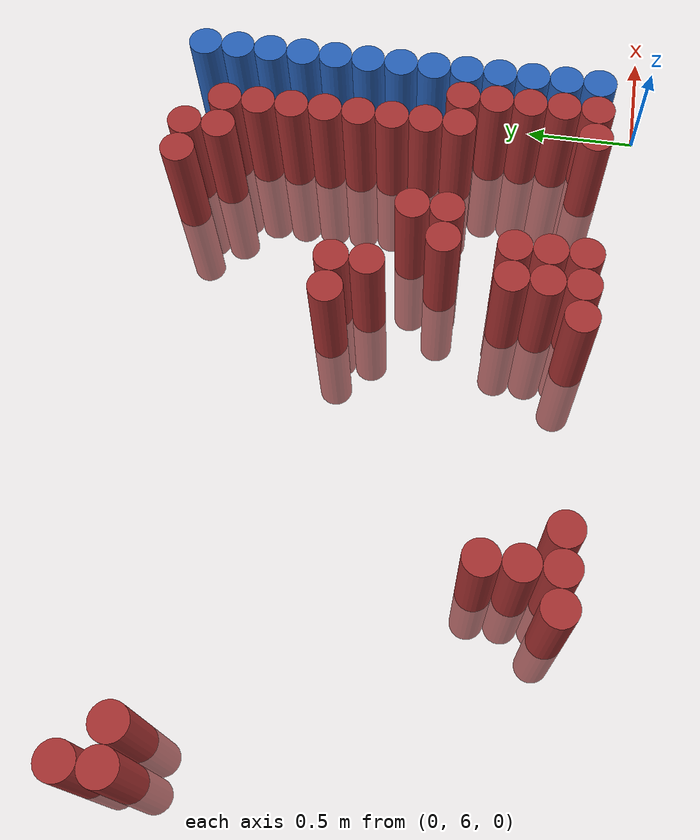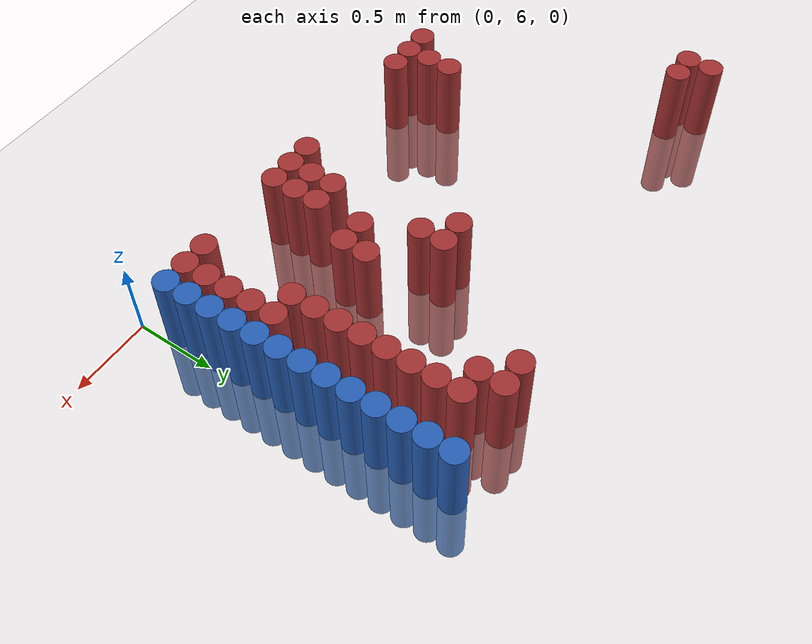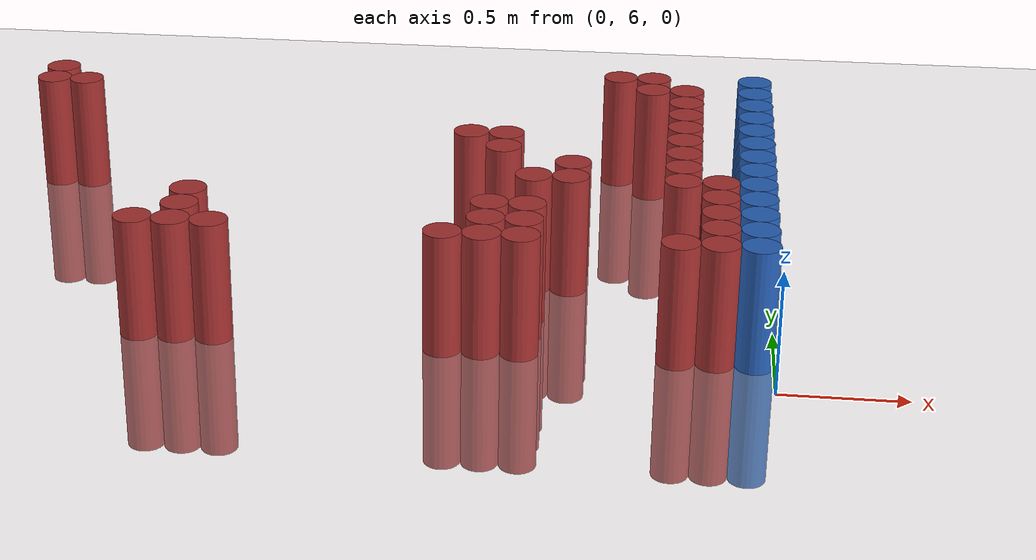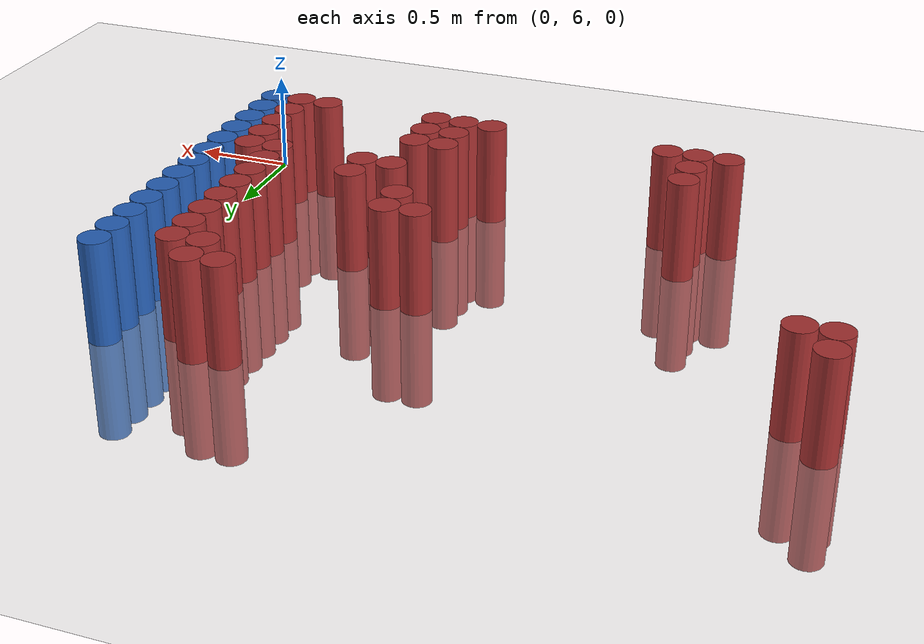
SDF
<sdf version="1.6">
 <world name="default">
  <model name="ground_plane">
   <static>1</static>
   <link name="link">
    <collision name="collision">
     <geometry><plane><normal>0 0 1</normal><size>100 100</size></plane></geometry>
     <surface><friction><ode><mu>100</mu><mu2>50</mu2></ode></friction></surface>
    </collision>
    <visual name="visual">
     <cast_shadows>0</cast_shadows>
     <geometry><plane><normal>0 0 1</normal><size>100 100</size></plane></geometry>
     <material>
      <script><uri>file://media/materials/scripts/gazebo.material</uri><name>Gazebo/Grey</name></script>
     </material>
    </visual>
   </link>
  </model>
  <model name="unit_cylinder_186">
   <static>1</static>
   <pose>-3.225000 7.725000 0.000000 0.000000 0.000000 0.000000</pose>
   <link name="link">
    <inertial>
     <mass>1</mass>
     <inertia><ixx>0.145833</ixx><ixy>0</ixy><ixz>0</ixz><iyy>0.145833</iyy><iyz>0</iyz><izz>0.125</izz></inertia>
    </inertial>
    <collision name="collision">
     <geometry><cylinder><radius>0.075000</radius><length>1</length></cylinder></geometry>
    </collision>
    <visual name="visual">
     <geometry><cylinder><radius>0.075000</radius><length>1</length></cylinder></geometry>
     <material>
      <ambient>0.648000 0.192000 0.192000 1</ambient>
      <diffuse>0.648000 0.192000 0.192000 1</diffuse>
     </material>
     <material>
      <script><name>Gazebo/Grey</name><uri>file://media/materials/scripts/gazebo.material</uri></script>
     </material>
    </visual>
   </link>
  </model>
  <model name="unit_cylinder_187">
   <static>1</static>
   <pose>-3.225000 7.875000 0.000000 0.000000 0.000000 0.000000</pose>
   <link name="link">
    <inertial>
     <mass>1</mass>
     <inertia><ixx>0.145833</ixx><ixy>0</ixy><ixz>0</ixz><iyy>0.145833</iyy><iyz>0</iyz><izz>0.125</izz></inertia>
    </inertial>
    <collision name="collision">
     <geometry><cylinder><radius>0.075000</radius><length>1</length></cylinder></geometry>
    </collision>
    <visual name="visual">
     <geometry><cylinder><radius>0.075000</radius><length>1</length></cylinder></geometry>
     <material>
      <ambient>0.648000 0.192000 0.192000 1</ambient>
      <diffuse>0.648000 0.192000 0.192000 1</diffuse>
     </material>
     <material>
      <script><name>Gazebo/Grey</name><uri>file://media/materials/scripts/gazebo.material</uri></script>
     </material>
    </visual>
   </link>
  </model>
  <model name="unit_cylinder_191">
   <static>1</static>
   <pose>-3.075000 7.725000 0.000000 0.000000 0.000000 0.000000</pose>
   <link name="link">
    <inertial>
     <mass>1</mass>
     <inertia><ixx>0.145833</ixx><ixy>0</ixy><ixz>0</ixz><iyy>0.145833</iyy><iyz>0</iyz><izz>0.125</izz></inertia>
    </inertial>
    <collision name="collision">
     <geometry><cylinder><radius>0.075000</radius><length>1</length></cylinder></geometry>
    </collision>
    <visual name="visual">
     <geometry><cylinder><radius>0.075000</radius><length>1</length></cylinder></geometry>
     <material>
      <ambient>0.648000 0.192000 0.192000 1</ambient>
      <diffuse>0.648000 0.192000 0.192000 1</diffuse>
     </material>
     <material>
      <script><name>Gazebo/Grey</name><uri>file://media/materials/scripts/gazebo.material</uri></script>
     </material>
    </visual>
   </link>
  </model>
  <model name="unit_cylinder_206">
   <static>1</static>
   <pose>-2.475000 6.225000 0.000000 0.000000 0.000000 0.000000</pose>
   <link name="link">
    <inertial>
     <mass>1</mass>
     <inertia><ixx>0.145833</ixx><ixy>0</ixy><ixz>0</ixz><iyy>0.145833</iyy><iyz>0</iyz><izz>0.125</izz></inertia>
    </inertial>
    <collision name="collision">
     <geometry><cylinder><radius>0.075000</radius><length>1</length></cylinder></geometry>
    </collision>
    <visual name="visual">
     <geometry><cylinder><radius>0.075000</radius><length>1</length></cylinder></geometry>
     <material>
      <ambient>0.648000 0.192000 0.192000 1</ambient>
      <diffuse>0.648000 0.192000 0.192000 1</diffuse>
     </material>
     <material>
      <script><name>Gazebo/Grey</name><uri>file://media/materials/scripts/gazebo.material</uri></script>
     </material>
    </visual>
   </link>
  </model>
  <model name="unit_cylinder_208">
   <static>1</static>
   <pose>-2.325000 6.225000 0.000000 0.000000 0.000000 0.000000</pose>
   <link name="link">
    <inertial>
     <mass>1</mass>
     <inertia><ixx>0.145833</ixx><ixy>0</ixy><ixz>0</ixz><iyy>0.145833</iyy><iyz>0</iyz><izz>0.125</izz></inertia>
    </inertial>
    <collision name="collision">
     <geometry><cylinder><radius>0.075000</radius><length>1</length></cylinder></geometry>
    </collision>
    <visual name="visual">
     <geometry><cylinder><radius>0.075000</radius><length>1</length></cylinder></geometry>
     <material>
      <ambient>0.648000 0.192000 0.192000 1</ambient>
      <diffuse>0.648000 0.192000 0.192000 1</diffuse>
     </material>
     <material>
      <script><name>Gazebo/Grey</name><uri>file://media/materials/scripts/gazebo.material</uri></script>
     </material>
    </visual>
   </link>
  </model>
  <model name="unit_cylinder_209">
   <static>1</static>
   <pose>-2.325000 6.375000 0.000000 0.000000 0.000000 0.000000</pose>
   <link name="link">
    <inertial>
     <mass>1</mass>
     <inertia><ixx>0.145833</ixx><ixy>0</ixy><ixz>0</ixz><iyy>0.145833</iyy><iyz>0</iyz><izz>0.125</izz></inertia>
    </inertial>
    <collision name="collision">
     <geometry><cylinder><radius>0.075000</radius><length>1</length></cylinder></geometry>
    </collision>
    <visual name="visual">
     <geometry><cylinder><radius>0.075000</radius><length>1</length></cylinder></geometry>
     <material>
      <ambient>0.648000 0.192000 0.192000 1</ambient>
      <diffuse>0.648000 0.192000 0.192000 1</diffuse>
     </material>
     <material>
      <script><name>Gazebo/Grey</name><uri>file://media/materials/scripts/gazebo.material</uri></script>
     </material>
    </visual>
   </link>
  </model>
  <model name="unit_cylinder_210">
   <static>1</static>
   <pose>-2.325000 6.525000 0.000000 0.000000 0.000000 0.000000</pose>
   <link name="link">
    <inertial>
     <mass>1</mass>
     <inertia><ixx>0.145833</ixx><ixy>0</ixy><ixz>0</ixz><iyy>0.145833</iyy><iyz>0</iyz><izz>0.125</izz></inertia>
    </inertial>
    <collision name="collision">
     <geometry><cylinder><radius>0.075000</radius><length>1</length></cylinder></geometry>
    </collision>
    <visual name="visual">
     <geometry><cylinder><radius>0.075000</radius><length>1</length></cylinder></geometry>
     <material>
      <ambient>0.648000 0.192000 0.192000 1</ambient>
      <diffuse>0.648000 0.192000 0.192000 1</diffuse>
     </material>
     <material>
      <script><name>Gazebo/Grey</name><uri>file://media/materials/scripts/gazebo.material</uri></script>
     </material>
    </visual>
   </link>
  </model>
  <model name="unit_cylinder_212">
   <static>1</static>
   <pose>-2.175000 6.225000 0.000000 0.000000 0.000000 0.000000</pose>
   <link name="link">
    <inertial>
     <mass>1</mass>
     <inertia><ixx>0.145833</ixx><ixy>0</ixy><ixz>0</ixz><iyy>0.145833</iyy><iyz>0</iyz><izz>0.125</izz></inertia>
    </inertial>
    <collision name="collision">
     <geometry><cylinder><radius>0.075000</radius><length>1</length></cylinder></geometry>
    </collision>
    <visual name="visual">
     <geometry><cylinder><radius>0.075000</radius><length>1</length></cylinder></geometry>
     <material>
      <ambient>0.648000 0.192000 0.192000 1</ambient>
      <diffuse>0.648000 0.192000 0.192000 1</diffuse>
     </material>
     <material>
      <script><name>Gazebo/Grey</name><uri>file://media/materials/scripts/gazebo.material</uri></script>
     </material>
    </visual>
   </link>
  </model>
  <model name="unit_cylinder_216">
   <static>1</static>
   <pose>-1.275000 6.225000 0.000000 0.000000 0.000000 0.000000</pose>
   <link name="link">
    <inertial>
     <mass>1</mass>
     <inertia><ixx>0.145833</ixx><ixy>0</ixy><ixz>0</ixz><iyy>0.145833</iyy><iyz>0</iyz><izz>0.125</izz></inertia>
    </inertial>
    <collision name="collision">
     <geometry><cylinder><radius>0.075000</radius><length>1</length></cylinder></geometry>
    </collision>
    <visual name="visual">
     <geometry><cylinder><radius>0.075000</radius><length>1</length></cylinder></geometry>
     <material>
      <ambient>0.648000 0.192000 0.192000 1</ambient>
      <diffuse>0.648000 0.192000 0.192000 1</diffuse>
     </material>
     <material>
      <script><name>Gazebo/Grey</name><uri>file://media/materials/scripts/gazebo.material</uri></script>
     </material>
    </visual>
   </link>
  </model>
  <model name="unit_cylinder_217">
   <static>1</static>
   <pose>-1.275000 7.275000 0.000000 0.000000 0.000000 0.000000</pose>
   <link name="link">
    <inertial>
     <mass>1</mass>
     <inertia><ixx>0.145833</ixx><ixy>0</ixy><ixz>0</ixz><iyy>0.145833</iyy><iyz>0</iyz><izz>0.125</izz></inertia>
    </inertial>
    <collision name="collision">
     <geometry><cylinder><radius>0.075000</radius><length>1</length></cylinder></geometry>
    </collision>
    <visual name="visual">
     <geometry><cylinder><radius>0.075000</radius><length>1</length></cylinder></geometry>
     <material>
      <ambient>0.648000 0.192000 0.192000 1</ambient>
      <diffuse>0.648000 0.192000 0.192000 1</diffuse>
     </material>
     <material>
      <script><name>Gazebo/Grey</name><uri>file://media/materials/scripts/gazebo.material</uri></script>
     </material>
    </visual>
   </link>
  </model>
  <model name="unit_cylinder_221">
   <static>1</static>
   <pose>-1.125000 6.225000 0.000000 0.000000 0.000000 0.000000</pose>
   <link name="link">
    <inertial>
     <mass>1</mass>
     <inertia><ixx>0.145833</ixx><ixy>0</ixy><ixz>0</ixz><iyy>0.145833</iyy><iyz>0</iyz><izz>0.125</izz></inertia>
    </inertial>
    <collision name="collision">
     <geometry><cylinder><radius>0.075000</radius><length>1</length></cylinder></geometry>
    </collision>
    <visual name="visual">
     <geometry><cylinder><radius>0.075000</radius><length>1</length></cylinder></geometry>
     <material>
      <ambient>0.648000 0.192000 0.192000 1</ambient>
      <diffuse>0.648000 0.192000 0.192000 1</diffuse>
     </material>
     <material>
      <script><name>Gazebo/Grey</name><uri>file://media/materials/scripts/gazebo.material</uri></script>
     </material>
    </visual>
   </link>
  </model>
  <model name="unit_cylinder_222">
   <static>1</static>
   <pose>-1.125000 6.375000 0.000000 0.000000 0.000000 0.000000</pose>
   <link name="link">
    <inertial>
     <mass>1</mass>
     <inertia><ixx>0.145833</ixx><ixy>0</ixy><ixz>0</ixz><iyy>0.145833</iyy><iyz>0</iyz><izz>0.125</izz></inertia>
    </inertial>
    <collision name="collision">
     <geometry><cylinder><radius>0.075000</radius><length>1</length></cylinder></geometry>
    </collision>
    <visual name="visual">
     <geometry><cylinder><radius>0.075000</radius><length>1</length></cylinder></geometry>
     <material>
      <ambient>0.648000 0.192000 0.192000 1</ambient>
      <diffuse>0.648000 0.192000 0.192000 1</diffuse>
     </material>
     <material>
      <script><name>Gazebo/Grey</name><uri>file://media/materials/scripts/gazebo.material</uri></script>
     </material>
    </visual>
   </link>
  </model>
  <model name="unit_cylinder_223">
   <static>1</static>
   <pose>-1.125000 6.525000 0.000000 0.000000 0.000000 0.000000</pose>
   <link name="link">
    <inertial>
     <mass>1</mass>
     <inertia><ixx>0.145833</ixx><ixy>0</ixy><ixz>0</ixz><iyy>0.145833</iyy><iyz>0</iyz><izz>0.125</izz></inertia>
    </inertial>
    <collision name="collision">
     <geometry><cylinder><radius>0.075000</radius><length>1</length></cylinder></geometry>
    </collision>
    <visual name="visual">
     <geometry><cylinder><radius>0.075000</radius><length>1</length></cylinder></geometry>
     <material>
      <ambient>0.648000 0.192000 0.192000 1</ambient>
      <diffuse>0.648000 0.192000 0.192000 1</diffuse>
     </material>
     <material>
      <script><name>Gazebo/Grey</name><uri>file://media/materials/scripts/gazebo.material</uri></script>
     </material>
    </visual>
   </link>
  </model>
  <model name="unit_cylinder_224">
   <static>1</static>
   <pose>-1.125000 7.125000 0.000000 0.000000 0.000000 0.000000</pose>
   <link name="link">
    <inertial>
     <mass>1</mass>
     <inertia><ixx>0.145833</ixx><ixy>0</ixy><ixz>0</ixz><iyy>0.145833</iyy><iyz>0</iyz><izz>0.125</izz></inertia>
    </inertial>
    <collision name="collision">
     <geometry><cylinder><radius>0.075000</radius><length>1</length></cylinder></geometry>
    </collision>
    <visual name="visual">
     <geometry><cylinder><radius>0.075000</radius><length>1</length></cylinder></geometry>
     <material>
      <ambient>0.648000 0.192000 0.192000 1</ambient>
      <diffuse>0.648000 0.192000 0.192000 1</diffuse>
     </material>
     <material>
      <script><name>Gazebo/Grey</name><uri>file://media/materials/scripts/gazebo.material</uri></script>
     </material>
    </visual>
   </link>
  </model>
  <model name="unit_cylinder_225">
   <static>1</static>
   <pose>-1.125000 7.275000 0.000000 0.000000 0.000000 0.000000</pose>
   <link name="link">
    <inertial>
     <mass>1</mass>
     <inertia><ixx>0.145833</ixx><ixy>0</ixy><ixz>0</ixz><iyy>0.145833</iyy><iyz>0</iyz><izz>0.125</izz></inertia>
    </inertial>
    <collision name="collision">
     <geometry><cylinder><radius>0.075000</radius><length>1</length></cylinder></geometry>
    </collision>
    <visual name="visual">
     <geometry><cylinder><radius>0.075000</radius><length>1</length></cylinder></geometry>
     <material>
      <ambient>0.648000 0.192000 0.192000 1</ambient>
      <diffuse>0.648000 0.192000 0.192000 1</diffuse>
     </material>
     <material>
      <script><name>Gazebo/Grey</name><uri>file://media/materials/scripts/gazebo.material</uri></script>
     </material>
    </visual>
   </link>
  </model>
  <model name="unit_cylinder_229">
   <static>1</static>
   <pose>-0.975000 6.225000 0.000000 0.000000 0.000000 0.000000</pose>
   <link name="link">
    <inertial>
     <mass>1</mass>
     <inertia><ixx>0.145833</ixx><ixy>0</ixy><ixz>0</ixz><iyy>0.145833</iyy><iyz>0</iyz><izz>0.125</izz></inertia>
    </inertial>
    <collision name="collision">
     <geometry><cylinder><radius>0.075000</radius><length>1</length></cylinder></geometry>
    </collision>
    <visual name="visual">
     <geometry><cylinder><radius>0.075000</radius><length>1</length></cylinder></geometry>
     <material>
      <ambient>0.648000 0.192000 0.192000 1</ambient>
      <diffuse>0.648000 0.192000 0.192000 1</diffuse>
     </material>
     <material>
      <script><name>Gazebo/Grey</name><uri>file://media/materials/scripts/gazebo.material</uri></script>
     </material>
    </visual>
   </link>
  </model>
  <model name="unit_cylinder_230">
   <static>1</static>
   <pose>-0.975000 6.375000 0.000000 0.000000 0.000000 0.000000</pose>
   <link name="link">
    <inertial>
     <mass>1</mass>
     <inertia><ixx>0.145833</ixx><ixy>0</ixy><ixz>0</ixz><iyy>0.145833</iyy><iyz>0</iyz><izz>0.125</izz></inertia>
    </inertial>
    <collision name="collision">
     <geometry><cylinder><radius>0.075000</radius><length>1</length></cylinder></geometry>
    </collision>
    <visual name="visual">
     <geometry><cylinder><radius>0.075000</radius><length>1</length></cylinder></geometry>
     <material>
      <ambient>0.648000 0.192000 0.192000 1</ambient>
      <diffuse>0.648000 0.192000 0.192000 1</diffuse>
     </material>
     <material>
      <script><name>Gazebo/Grey</name><uri>file://media/materials/scripts/gazebo.material</uri></script>
     </material>
    </visual>
   </link>
  </model>
  <model name="unit_cylinder_231">
   <static>1</static>
   <pose>-0.975000 6.525000 0.000000 0.000000 0.000000 0.000000</pose>
   <link name="link">
    <inertial>
     <mass>1</mass>
     <inertia><ixx>0.145833</ixx><ixy>0</ixy><ixz>0</ixz><iyy>0.145833</iyy><iyz>0</iyz><izz>0.125</izz></inertia>
    </inertial>
    <collision name="collision">
     <geometry><cylinder><radius>0.075000</radius><length>1</length></cylinder></geometry>
    </collision>
    <visual name="visual">
     <geometry><cylinder><radius>0.075000</radius><length>1</length></cylinder></geometry>
     <material>
      <ambient>0.648000 0.192000 0.192000 1</ambient>
      <diffuse>0.648000 0.192000 0.192000 1</diffuse>
     </material>
     <material>
      <script><name>Gazebo/Grey</name><uri>file://media/materials/scripts/gazebo.material</uri></script>
     </material>
    </visual>
   </link>
  </model>
  <model name="unit_cylinder_232">
   <static>1</static>
   <pose>-0.975000 6.825000 0.000000 0.000000 0.000000 0.000000</pose>
   <link name="link">
    <inertial>
     <mass>1</mass>
     <inertia><ixx>0.145833</ixx><ixy>0</ixy><ixz>0</ixz><iyy>0.145833</iyy><iyz>0</iyz><izz>0.125</izz></inertia>
    </inertial>
    <collision name="collision">
     <geometry><cylinder><radius>0.075000</radius><length>1</length></cylinder></geometry>
    </collision>
    <visual name="visual">
     <geometry><cylinder><radius>0.075000</radius><length>1</length></cylinder></geometry>
     <material>
      <ambient>0.648000 0.192000 0.192000 1</ambient>
      <diffuse>0.648000 0.192000 0.192000 1</diffuse>
     </material>
     <material>
      <script><name>Gazebo/Grey</name><uri>file://media/materials/scripts/gazebo.material</uri></script>
     </material>
    </visual>
   </link>
  </model>
  <model name="unit_cylinder_236">
   <static>1</static>
   <pose>-0.825000 6.825000 0.000000 0.000000 0.000000 0.000000</pose>
   <link name="link">
    <inertial>
     <mass>1</mass>
     <inertia><ixx>0.145833</ixx><ixy>0</ixy><ixz>0</ixz><iyy>0.145833</iyy><iyz>0</iyz><izz>0.125</izz></inertia>
    </inertial>
    <collision name="collision">
     <geometry><cylinder><radius>0.075000</radius><length>1</length></cylinder></geometry>
    </collision>
    <visual name="visual">
     <geometry><cylinder><radius>0.075000</radius><length>1</length></cylinder></geometry>
     <material>
      <ambient>0.648000 0.192000 0.192000 1</ambient>
      <diffuse>0.648000 0.192000 0.192000 1</diffuse>
     </material>
     <material>
      <script><name>Gazebo/Grey</name><uri>file://media/materials/scripts/gazebo.material</uri></script>
     </material>
    </visual>
   </link>
  </model>
  <model name="unit_cylinder_237">
   <static>1</static>
   <pose>-0.825000 6.975000 0.000000 0.000000 0.000000 0.000000</pose>
   <link name="link">
    <inertial>
     <mass>1</mass>
     <inertia><ixx>0.145833</ixx><ixy>0</ixy><ixz>0</ixz><iyy>0.145833</iyy><iyz>0</iyz><izz>0.125</izz></inertia>
    </inertial>
    <collision name="collision">
     <geometry><cylinder><radius>0.075000</radius><length>1</length></cylinder></geometry>
    </collision>
    <visual name="visual">
     <geometry><cylinder><radius>0.075000</radius><length>1</length></cylinder></geometry>
     <material>
      <ambient>0.648000 0.192000 0.192000 1</ambient>
      <diffuse>0.648000 0.192000 0.192000 1</diffuse>
     </material>
     <material>
      <script><name>Gazebo/Grey</name><uri>file://media/materials/scripts/gazebo.material</uri></script>
     </material>
    </visual>
   </link>
  </model>
  <model name="unit_cylinder_243">
   <static>1</static>
   <pose>-0.675000 8.025000 0.000000 0.000000 0.000000 0.000000</pose>
   <link name="link">
    <inertial>
     <mass>1</mass>
     <inertia><ixx>0.145833</ixx><ixy>0</ixy><ixz>0</ixz><iyy>0.145833</iyy><iyz>0</iyz><izz>0.125</izz></inertia>
    </inertial>
    <collision name="collision">
     <geometry><cylinder><radius>0.075000</radius><length>1</length></cylinder></geometry>
    </collision>
    <visual name="visual">
     <geometry><cylinder><radius>0.075000</radius><length>1</length></cylinder></geometry>
     <material>
      <ambient>0.648000 0.192000 0.192000 1</ambient>
      <diffuse>0.648000 0.192000 0.192000 1</diffuse>
     </material>
     <material>
      <script><name>Gazebo/Grey</name><uri>file://media/materials/scripts/gazebo.material</uri></script>
     </material>
    </visual>
   </link>
  </model>
  <model name="unit_cylinder_250">
   <static>1</static>
   <pose>-0.525000 7.875000 0.000000 0.000000 0.000000 0.000000</pose>
   <link name="link">
    <inertial>
     <mass>1</mass>
     <inertia><ixx>0.145833</ixx><ixy>0</ixy><ixz>0</ixz><iyy>0.145833</iyy><iyz>0</iyz><izz>0.125</izz></inertia>
    </inertial>
    <collision name="collision">
     <geometry><cylinder><radius>0.075000</radius><length>1</length></cylinder></geometry>
    </collision>
    <visual name="visual">
     <geometry><cylinder><radius>0.075000</radius><length>1</length></cylinder></geometry>
     <material>
      <ambient>0.648000 0.192000 0.192000 1</ambient>
      <diffuse>0.648000 0.192000 0.192000 1</diffuse>
     </material>
     <material>
      <script><name>Gazebo/Grey</name><uri>file://media/materials/scripts/gazebo.material</uri></script>
     </material>
    </visual>
   </link>
  </model>
  <model name="unit_cylinder_251">
   <static>1</static>
   <pose>-0.525000 8.025000 0.000000 0.000000 0.000000 0.000000</pose>
   <link name="link">
    <inertial>
     <mass>1</mass>
     <inertia><ixx>0.145833</ixx><ixy>0</ixy><ixz>0</ixz><iyy>0.145833</iyy><iyz>0</iyz><izz>0.125</izz></inertia>
    </inertial>
    <collision name="collision">
     <geometry><cylinder><radius>0.075000</radius><length>1</length></cylinder></geometry>
    </collision>
    <visual name="visual">
     <geometry><cylinder><radius>0.075000</radius><length>1</length></cylinder></geometry>
     <material>
      <ambient>0.648000 0.192000 0.192000 1</ambient>
      <diffuse>0.648000 0.192000 0.192000 1</diffuse>
     </material>
     <material>
      <script><name>Gazebo/Grey</name><uri>file://media/materials/scripts/gazebo.material</uri></script>
     </material>
    </visual>
   </link>
  </model>
  <model name="unit_cylinder_261">
   <static>1</static>
   <pose>-0.375000 6.225000 0.000000 0.000000 0.000000 0.000000</pose>
   <link name="link">
    <inertial>
     <mass>1</mass>
     <inertia><ixx>0.145833</ixx><ixy>0</ixy><ixz>0</ixz><iyy>0.145833</iyy><iyz>0</iyz><izz>0.125</izz></inertia>
    </inertial>
    <collision name="collision">
     <geometry><cylinder><radius>0.075000</radius><length>1</length></cylinder></geometry>
    </collision>
    <visual name="visual">
     <geometry><cylinder><radius>0.075000</radius><length>1</length></cylinder></geometry>
     <material>
      <ambient>0.648000 0.192000 0.192000 1</ambient>
      <diffuse>0.648000 0.192000 0.192000 1</diffuse>
     </material>
     <material>
      <script><name>Gazebo/Grey</name><uri>file://media/materials/scripts/gazebo.material</uri></script>
     </material>
    </visual>
   </link>
  </model>
  <model name="unit_cylinder_262">
   <static>1</static>
   <pose>-0.375000 6.825000 0.000000 0.000000 0.000000 0.000000</pose>
   <link name="link">
    <inertial>
     <mass>1</mass>
     <inertia><ixx>0.145833</ixx><ixy>0</ixy><ixz>0</ixz><iyy>0.145833</iyy><iyz>0</iyz><izz>0.125</izz></inertia>
    </inertial>
    <collision name="collision">
     <geometry><cylinder><radius>0.075000</radius><length>1</length></cylinder></geometry>
    </collision>
    <visual name="visual">
     <geometry><cylinder><radius>0.075000</radius><length>1</length></cylinder></geometry>
     <material>
      <ambient>0.648000 0.192000 0.192000 1</ambient>
      <diffuse>0.648000 0.192000 0.192000 1</diffuse>
     </material>
     <material>
      <script><name>Gazebo/Grey</name><uri>file://media/materials/scripts/gazebo.material</uri></script>
     </material>
    </visual>
   </link>
  </model>
  <model name="unit_cylinder_263">
   <static>1</static>
   <pose>-0.375000 6.975000 0.000000 0.000000 0.000000 0.000000</pose>
   <link name="link">
    <inertial>
     <mass>1</mass>
     <inertia><ixx>0.145833</ixx><ixy>0</ixy><ixz>0</ixz><iyy>0.145833</iyy><iyz>0</iyz><izz>0.125</izz></inertia>
    </inertial>
    <collision name="collision">
     <geometry><cylinder><radius>0.075000</radius><length>1</length></cylinder></geometry>
    </collision>
    <visual name="visual">
     <geometry><cylinder><radius>0.075000</radius><length>1</length></cylinder></geometry>
     <material>
      <ambient>0.648000 0.192000 0.192000 1</ambient>
      <diffuse>0.648000 0.192000 0.192000 1</diffuse>
     </material>
     <material>
      <script><name>Gazebo/Grey</name><uri>file://media/materials/scripts/gazebo.material</uri></script>
     </material>
    </visual>
   </link>
  </model>
  <model name="unit_cylinder_264">
   <static>1</static>
   <pose>-0.375000 7.125000 0.000000 0.000000 0.000000 0.000000</pose>
   <link name="link">
    <inertial>
     <mass>1</mass>
     <inertia><ixx>0.145833</ixx><ixy>0</ixy><ixz>0</ixz><iyy>0.145833</iyy><iyz>0</iyz><izz>0.125</izz></inertia>
    </inertial>
    <collision name="collision">
     <geometry><cylinder><radius>0.075000</radius><length>1</length></cylinder></geometry>
    </collision>
    <visual name="visual">
     <geometry><cylinder><radius>0.075000</radius><length>1</length></cylinder></geometry>
     <material>
      <ambient>0.648000 0.192000 0.192000 1</ambient>
      <diffuse>0.648000 0.192000 0.192000 1</diffuse>
     </material>
     <material>
      <script><name>Gazebo/Grey</name><uri>file://media/materials/scripts/gazebo.material</uri></script>
     </material>
    </visual>
   </link>
  </model>
  <model name="unit_cylinder_265">
   <static>1</static>
   <pose>-0.375000 7.275000 0.000000 0.000000 0.000000 0.000000</pose>
   <link name="link">
    <inertial>
     <mass>1</mass>
     <inertia><ixx>0.145833</ixx><ixy>0</ixy><ixz>0</ixz><iyy>0.145833</iyy><iyz>0</iyz><izz>0.125</izz></inertia>
    </inertial>
    <collision name="collision">
     <geometry><cylinder><radius>0.075000</radius><length>1</length></cylinder></geometry>
    </collision>
    <visual name="visual">
     <geometry><cylinder><radius>0.075000</radius><length>1</length></cylinder></geometry>
     <material>
      <ambient>0.648000 0.192000 0.192000 1</ambient>
      <diffuse>0.648000 0.192000 0.192000 1</diffuse>
     </material>
     <material>
      <script><name>Gazebo/Grey</name><uri>file://media/materials/scripts/gazebo.material</uri></script>
     </material>
    </visual>
   </link>
  </model>
  <model name="unit_cylinder_266">
   <static>1</static>
   <pose>-0.375000 7.425000 0.000000 0.000000 0.000000 0.000000</pose>
   <link name="link">
    <inertial>
     <mass>1</mass>
     <inertia><ixx>0.145833</ixx><ixy>0</ixy><ixz>0</ixz><iyy>0.145833</iyy><iyz>0</iyz><izz>0.125</izz></inertia>
    </inertial>
    <collision name="collision">
     <geometry><cylinder><radius>0.075000</radius><length>1</length></cylinder></geometry>
    </collision>
    <visual name="visual">
     <geometry><cylinder><radius>0.075000</radius><length>1</length></cylinder></geometry>
     <material>
      <ambient>0.648000 0.192000 0.192000 1</ambient>
      <diffuse>0.648000 0.192000 0.192000 1</diffuse>
     </material>
     <material>
      <script><name>Gazebo/Grey</name><uri>file://media/materials/scripts/gazebo.material</uri></script>
     </material>
    </visual>
   </link>
  </model>
  <model name="unit_cylinder_267">
   <static>1</static>
   <pose>-0.375000 7.575000 0.000000 0.000000 0.000000 0.000000</pose>
   <link name="link">
    <inertial>
     <mass>1</mass>
     <inertia><ixx>0.145833</ixx><ixy>0</ixy><ixz>0</ixz><iyy>0.145833</iyy><iyz>0</iyz><izz>0.125</izz></inertia>
    </inertial>
    <collision name="collision">
     <geometry><cylinder><radius>0.075000</radius><length>1</length></cylinder></geometry>
    </collision>
    <visual name="visual">
     <geometry><cylinder><radius>0.075000</radius><length>1</length></cylinder></geometry>
     <material>
      <ambient>0.648000 0.192000 0.192000 1</ambient>
      <diffuse>0.648000 0.192000 0.192000 1</diffuse>
     </material>
     <material>
      <script><name>Gazebo/Grey</name><uri>file://media/materials/scripts/gazebo.material</uri></script>
     </material>
    </visual>
   </link>
  </model>
  <model name="unit_cylinder_268">
   <static>1</static>
   <pose>-0.375000 7.725000 0.000000 0.000000 0.000000 0.000000</pose>
   <link name="link">
    <inertial>
     <mass>1</mass>
     <inertia><ixx>0.145833</ixx><ixy>0</ixy><ixz>0</ixz><iyy>0.145833</iyy><iyz>0</iyz><izz>0.125</izz></inertia>
    </inertial>
    <collision name="collision">
     <geometry><cylinder><radius>0.075000</radius><length>1</length></cylinder></geometry>
    </collision>
    <visual name="visual">
     <geometry><cylinder><radius>0.075000</radius><length>1</length></cylinder></geometry>
     <material>
      <ambient>0.648000 0.192000 0.192000 1</ambient>
      <diffuse>0.648000 0.192000 0.192000 1</diffuse>
     </material>
     <material>
      <script><name>Gazebo/Grey</name><uri>file://media/materials/scripts/gazebo.material</uri></script>
     </material>
    </visual>
   </link>
  </model>
  <model name="unit_cylinder_269">
   <static>1</static>
   <pose>-0.375000 7.875000 0.000000 0.000000 0.000000 0.000000</pose>
   <link name="link">
    <inertial>
     <mass>1</mass>
     <inertia><ixx>0.145833</ixx><ixy>0</ixy><ixz>0</ixz><iyy>0.145833</iyy><iyz>0</iyz><izz>0.125</izz></inertia>
    </inertial>
    <collision name="collision">
     <geometry><cylinder><radius>0.075000</radius><length>1</length></cylinder></geometry>
    </collision>
    <visual name="visual">
     <geometry><cylinder><radius>0.075000</radius><length>1</length></cylinder></geometry>
     <material>
      <ambient>0.648000 0.192000 0.192000 1</ambient>
      <diffuse>0.648000 0.192000 0.192000 1</diffuse>
     </material>
     <material>
      <script><name>Gazebo/Grey</name><uri>file://media/materials/scripts/gazebo.material</uri></script>
     </material>
    </visual>
   </link>
  </model>
  <model name="unit_cylinder_274">
   <static>1</static>
   <pose>-0.225000 6.225000 0.000000 0.000000 0.000000 0.000000</pose>
   <link name="link">
    <inertial>
     <mass>1</mass>
     <inertia><ixx>0.145833</ixx><ixy>0</ixy><ixz>0</ixz><iyy>0.145833</iyy><iyz>0</iyz><izz>0.125</izz></inertia>
    </inertial>
    <collision name="collision">
     <geometry><cylinder><radius>0.075000</radius><length>1</length></cylinder></geometry>
    </collision>
    <visual name="visual">
     <geometry><cylinder><radius>0.075000</radius><length>1</length></cylinder></geometry>
     <material>
      <ambient>0.648000 0.192000 0.192000 1</ambient>
      <diffuse>0.648000 0.192000 0.192000 1</diffuse>
     </material>
     <material>
      <script><name>Gazebo/Grey</name><uri>file://media/materials/scripts/gazebo.material</uri></script>
     </material>
    </visual>
   </link>
  </model>
  <model name="unit_cylinder_275">
   <static>1</static>
   <pose>-0.225000 6.375000 0.000000 0.000000 0.000000 0.000000</pose>
   <link name="link">
    <inertial>
     <mass>1</mass>
     <inertia><ixx>0.145833</ixx><ixy>0</ixy><ixz>0</ixz><iyy>0.145833</iyy><iyz>0</iyz><izz>0.125</izz></inertia>
    </inertial>
    <collision name="collision">
     <geometry><cylinder><radius>0.075000</radius><length>1</length></cylinder></geometry>
    </collision>
    <visual name="visual">
     <geometry><cylinder><radius>0.075000</radius><length>1</length></cylinder></geometry>
     <material>
      <ambient>0.648000 0.192000 0.192000 1</ambient>
      <diffuse>0.648000 0.192000 0.192000 1</diffuse>
     </material>
     <material>
      <script><name>Gazebo/Grey</name><uri>file://media/materials/scripts/gazebo.material</uri></script>
     </material>
    </visual>
   </link>
  </model>
  <model name="unit_cylinder_276">
   <static>1</static>
   <pose>-0.225000 6.525000 0.000000 0.000000 0.000000 0.000000</pose>
   <link name="link">
    <inertial>
     <mass>1</mass>
     <inertia><ixx>0.145833</ixx><ixy>0</ixy><ixz>0</ixz><iyy>0.145833</iyy><iyz>0</iyz><izz>0.125</izz></inertia>
    </inertial>
    <collision name="collision">
     <geometry><cylinder><radius>0.075000</radius><length>1</length></cylinder></geometry>
    </collision>
    <visual name="visual">
     <geometry><cylinder><radius>0.075000</radius><length>1</length></cylinder></geometry>
     <material>
      <ambient>0.648000 0.192000 0.192000 1</ambient>
      <diffuse>0.648000 0.192000 0.192000 1</diffuse>
     </material>
     <material>
      <script><name>Gazebo/Grey</name><uri>file://media/materials/scripts/gazebo.material</uri></script>
     </material>
    </visual>
   </link>
  </model>
  <model name="unit_cylinder_277">
   <static>1</static>
   <pose>-0.225000 6.675000 0.000000 0.000000 0.000000 0.000000</pose>
   <link name="link">
    <inertial>
     <mass>1</mass>
     <inertia><ixx>0.145833</ixx><ixy>0</ixy><ixz>0</ixz><iyy>0.145833</iyy><iyz>0</iyz><izz>0.125</izz></inertia>
    </inertial>
    <collision name="collision">
     <geometry><cylinder><radius>0.075000</radius><length>1</length></cylinder></geometry>
    </collision>
    <visual name="visual">
     <geometry><cylinder><radius>0.075000</radius><length>1</length></cylinder></geometry>
     <material>
      <ambient>0.648000 0.192000 0.192000 1</ambient>
      <diffuse>0.648000 0.192000 0.192000 1</diffuse>
     </material>
     <material>
      <script><name>Gazebo/Grey</name><uri>file://media/materials/scripts/gazebo.material</uri></script>
     </material>
    </visual>
   </link>
  </model>
  <model name="unit_cylinder_278">
   <static>1</static>
   <pose>-0.225000 6.825000 0.000000 0.000000 0.000000 0.000000</pose>
   <link name="link">
    <inertial>
     <mass>1</mass>
     <inertia><ixx>0.145833</ixx><ixy>0</ixy><ixz>0</ixz><iyy>0.145833</iyy><iyz>0</iyz><izz>0.125</izz></inertia>
    </inertial>
    <collision name="collision">
     <geometry><cylinder><radius>0.075000</radius><length>1</length></cylinder></geometry>
    </collision>
    <visual name="visual">
     <geometry><cylinder><radius>0.075000</radius><length>1</length></cylinder></geometry>
     <material>
      <ambient>0.648000 0.192000 0.192000 1</ambient>
      <diffuse>0.648000 0.192000 0.192000 1</diffuse>
     </material>
     <material>
      <script><name>Gazebo/Grey</name><uri>file://media/materials/scripts/gazebo.material</uri></script>
     </material>
    </visual>
   </link>
  </model>
  <model name="unit_cylinder_287">
   <static>1</static>
   <pose>-0.075000 6.225000 0.000000 0.000000 0.000000 0.000000</pose>
   <link name="link">
    <inertial>
     <mass>1</mass>
     <inertia><ixx>0.145833</ixx><ixy>0</ixy><ixz>0</ixz><iyy>0.145833</iyy><iyz>0</iyz><izz>0.125</izz></inertia>
    </inertial>
    <collision name="collision">
     <geometry><cylinder><radius>0.075000</radius><length>1</length></cylinder></geometry>
    </collision>
    <visual name="visual">
     <geometry><cylinder><radius>0.075000</radius><length>1</length></cylinder></geometry>
     <material>
      <ambient>0.152000 0.379000 0.720000 1</ambient>
      <diffuse>0.152000 0.379000 0.720000 1</diffuse>
     </material>
     <material>
      <script><name>Gazebo/Grey</name><uri>file://media/materials/scripts/gazebo.material</uri></script>
     </material>
    </visual>
   </link>
  </model>
  <model name="unit_cylinder_288">
   <static>1</static>
   <pose>-0.075000 6.375000 0.000000 0.000000 0.000000 0.000000</pose>
   <link name="link">
    <inertial>
     <mass>1</mass>
     <inertia><ixx>0.145833</ixx><ixy>0</ixy><ixz>0</ixz><iyy>0.145833</iyy><iyz>0</iyz><izz>0.125</izz></inertia>
    </inertial>
    <collision name="collision">
     <geometry><cylinder><radius>0.075000</radius><length>1</length></cylinder></geometry>
    </collision>
    <visual name="visual">
     <geometry><cylinder><radius>0.075000</radius><length>1</length></cylinder></geometry>
     <material>
      <ambient>0.152000 0.379000 0.720000 1</ambient>
      <diffuse>0.152000 0.379000 0.720000 1</diffuse>
     </material>
     <material>
      <script><name>Gazebo/Grey</name><uri>file://media/materials/scripts/gazebo.material</uri></script>
     </material>
    </visual>
   </link>
  </model>
  <model name="unit_cylinder_289">
   <static>1</static>
   <pose>-0.075000 6.525000 0.000000 0.000000 0.000000 0.000000</pose>
   <link name="link">
    <inertial>
     <mass>1</mass>
     <inertia><ixx>0.145833</ixx><ixy>0</ixy><ixz>0</ixz><iyy>0.145833</iyy><iyz>0</iyz><izz>0.125</izz></inertia>
    </inertial>
    <collision name="collision">
     <geometry><cylinder><radius>0.075000</radius><length>1</length></cylinder></geometry>
    </collision>
    <visual name="visual">
     <geometry><cylinder><radius>0.075000</radius><length>1</length></cylinder></geometry>
     <material>
      <ambient>0.152000 0.379000 0.720000 1</ambient>
      <diffuse>0.152000 0.379000 0.720000 1</diffuse>
     </material>
     <material>
      <script><name>Gazebo/Grey</name><uri>file://media/materials/scripts/gazebo.material</uri></script>
     </material>
    </visual>
   </link>
  </model>
  <model name="unit_cylinder_290">
   <static>1</static>
   <pose>-0.075000 6.675000 0.000000 0.000000 0.000000 0.000000</pose>
   <link name="link">
    <inertial>
     <mass>1</mass>
     <inertia><ixx>0.145833</ixx><ixy>0</ixy><ixz>0</ixz><iyy>0.145833</iyy><iyz>0</iyz><izz>0.125</izz></inertia>
    </inertial>
    <collision name="collision">
     <geometry><cylinder><radius>0.075000</radius><length>1</length></cylinder></geometry>
    </collision>
    <visual name="visual">
     <geometry><cylinder><radius>0.075000</radius><length>1</length></cylinder></geometry>
     <material>
      <ambient>0.152000 0.379000 0.720000 1</ambient>
      <diffuse>0.152000 0.379000 0.720000 1</diffuse>
     </material>
     <material>
      <script><name>Gazebo/Grey</name><uri>file://media/materials/scripts/gazebo.material</uri></script>
     </material>
    </visual>
   </link>
  </model>
  <model name="unit_cylinder_291">
   <static>1</static>
   <pose>-0.075000 6.825000 0.000000 0.000000 0.000000 0.000000</pose>
   <link name="link">
    <inertial>
     <mass>1</mass>
     <inertia><ixx>0.145833</ixx><ixy>0</ixy><ixz>0</ixz><iyy>0.145833</iyy><iyz>0</iyz><izz>0.125</izz></inertia>
    </inertial>
    <collision name="collision">
     <geometry><cylinder><radius>0.075000</radius><length>1</length></cylinder></geometry>
    </collision>
    <visual name="visual">
     <geometry><cylinder><radius>0.075000</radius><length>1</length></cylinder></geometry>
     <material>
      <ambient>0.152000 0.379000 0.720000 1</ambient>
      <diffuse>0.152000 0.379000 0.720000 1</diffuse>
     </material>
     <material>
      <script><name>Gazebo/Grey</name><uri>file://media/materials/scripts/gazebo.material</uri></script>
     </material>
    </visual>
   </link>
  </model>
  <model name="unit_cylinder_292">
   <static>1</static>
   <pose>-0.075000 6.975000 0.000000 0.000000 0.000000 0.000000</pose>
   <link name="link">
    <inertial>
     <mass>1</mass>
     <inertia><ixx>0.145833</ixx><ixy>0</ixy><ixz>0</ixz><iyy>0.145833</iyy><iyz>0</iyz><izz>0.125</izz></inertia>
    </inertial>
    <collision name="collision">
     <geometry><cylinder><radius>0.075000</radius><length>1</length></cylinder></geometry>
    </collision>
    <visual name="visual">
     <geometry><cylinder><radius>0.075000</radius><length>1</length></cylinder></geometry>
     <material>
      <ambient>0.152000 0.379000 0.720000 1</ambient>
      <diffuse>0.152000 0.379000 0.720000 1</diffuse>
     </material>
     <material>
      <script><name>Gazebo/Grey</name><uri>file://media/materials/scripts/gazebo.material</uri></script>
     </material>
    </visual>
   </link>
  </model>
  <model name="unit_cylinder_293">
   <static>1</static>
   <pose>-0.075000 7.125000 0.000000 0.000000 0.000000 0.000000</pose>
   <link name="link">
    <inertial>
     <mass>1</mass>
     <inertia><ixx>0.145833</ixx><ixy>0</ixy><ixz>0</ixz><iyy>0.145833</iyy><iyz>0</iyz><izz>0.125</izz></inertia>
    </inertial>
    <collision name="collision">
     <geometry><cylinder><radius>0.075000</radius><length>1</length></cylinder></geometry>
    </collision>
    <visual name="visual">
     <geometry><cylinder><radius>0.075000</radius><length>1</length></cylinder></geometry>
     <material>
      <ambient>0.152000 0.379000 0.720000 1</ambient>
      <diffuse>0.152000 0.379000 0.720000 1</diffuse>
     </material>
     <material>
      <script><name>Gazebo/Grey</name><uri>file://media/materials/scripts/gazebo.material</uri></script>
     </material>
    </visual>
   </link>
  </model>
  <model name="unit_cylinder_294">
   <static>1</static>
   <pose>-0.075000 7.275000 0.000000 0.000000 0.000000 0.000000</pose>
   <link name="link">
    <inertial>
     <mass>1</mass>
     <inertia><ixx>0.145833</ixx><ixy>0</ixy><ixz>0</ixz><iyy>0.145833</iyy><iyz>0</iyz><izz>0.125</izz></inertia>
    </inertial>
    <collision name="collision">
     <geometry><cylinder><radius>0.075000</radius><length>1</length></cylinder></geometry>
    </collision>
    <visual name="visual">
     <geometry><cylinder><radius>0.075000</radius><length>1</length></cylinder></geometry>
     <material>
      <ambient>0.152000 0.379000 0.720000 1</ambient>
      <diffuse>0.152000 0.379000 0.720000 1</diffuse>
     </material>
     <material>
      <script><name>Gazebo/Grey</name><uri>file://media/materials/scripts/gazebo.material</uri></script>
     </material>
    </visual>
   </link>
  </model>
  <model name="unit_cylinder_295">
   <static>1</static>
   <pose>-0.075000 7.425000 0.000000 0.000000 0.000000 0.000000</pose>
   <link name="link">
    <inertial>
     <mass>1</mass>
     <inertia><ixx>0.145833</ixx><ixy>0</ixy><ixz>0</ixz><iyy>0.145833</iyy><iyz>0</iyz><izz>0.125</izz></inertia>
    </inertial>
    <collision name="collision">
     <geometry><cylinder><radius>0.075000</radius><length>1</length></cylinder></geometry>
    </collision>
    <visual name="visual">
     <geometry><cylinder><radius>0.075000</radius><length>1</length></cylinder></geometry>
     <material>
      <ambient>0.152000 0.379000 0.720000 1</ambient>
      <diffuse>0.152000 0.379000 0.720000 1</diffuse>
     </material>
     <material>
      <script><name>Gazebo/Grey</name><uri>file://media/materials/scripts/gazebo.material</uri></script>
     </material>
    </visual>
   </link>
  </model>
  <model name="unit_cylinder_296">
   <static>1</static>
   <pose>-0.075000 7.575000 0.000000 0.000000 0.000000 0.000000</pose>
   <link name="link">
    <inertial>
     <mass>1</mass>
     <inertia><ixx>0.145833</ixx><ixy>0</ixy><ixz>0</ixz><iyy>0.145833</iyy><iyz>0</iyz><izz>0.125</izz></inertia>
    </inertial>
    <collision name="collision">
     <geometry><cylinder><radius>0.075000</radius><length>1</length></cylinder></geometry>
    </collision>
    <visual name="visual">
     <geometry><cylinder><radius>0.075000</radius><length>1</length></cylinder></geometry>
     <material>
      <ambient>0.152000 0.379000 0.720000 1</ambient>
      <diffuse>0.152000 0.379000 0.720000 1</diffuse>
     </material>
     <material>
      <script><name>Gazebo/Grey</name><uri>file://media/materials/scripts/gazebo.material</uri></script>
     </material>
    </visual>
   </link>
  </model>
  <model name="unit_cylinder_297">
   <static>1</static>
   <pose>-0.075000 7.725000 0.000000 0.000000 0.000000 0.000000</pose>
   <link name="link">
    <inertial>
     <mass>1</mass>
     <inertia><ixx>0.145833</ixx><ixy>0</ixy><ixz>0</ixz><iyy>0.145833</iyy><iyz>0</iyz><izz>0.125</izz></inertia>
    </inertial>
    <collision name="collision">
     <geometry><cylinder><radius>0.075000</radius><length>1</length></cylinder></geometry>
    </collision>
    <visual name="visual">
     <geometry><cylinder><radius>0.075000</radius><length>1</length></cylinder></geometry>
     <material>
      <ambient>0.152000 0.379000 0.720000 1</ambient>
      <diffuse>0.152000 0.379000 0.720000 1</diffuse>
     </material>
     <material>
      <script><name>Gazebo/Grey</name><uri>file://media/materials/scripts/gazebo.material</uri></script>
     </material>
    </visual>
   </link>
  </model>
  <model name="unit_cylinder_298">
   <static>1</static>
   <pose>-0.075000 7.875000 0.000000 0.000000 0.000000 0.000000</pose>
   <link name="link">
    <inertial>
     <mass>1</mass>
     <inertia><ixx>0.145833</ixx><ixy>0</ixy><ixz>0</ixz><iyy>0.145833</iyy><iyz>0</iyz><izz>0.125</izz></inertia>
    </inertial>
    <collision name="collision">
     <geometry><cylinder><radius>0.075000</radius><length>1</length></cylinder></geometry>
    </collision>
    <visual name="visual">
     <geometry><cylinder><radius>0.075000</radius><length>1</length></cylinder></geometry>
     <material>
      <ambient>0.152000 0.379000 0.720000 1</ambient>
      <diffuse>0.152000 0.379000 0.720000 1</diffuse>
     </material>
     <material>
      <script><name>Gazebo/Grey</name><uri>file://media/materials/scripts/gazebo.material</uri></script>
     </material>
    </visual>
   </link>
  </model>
  <model name="unit_cylinder_299">
   <static>1</static>
   <pose>-0.075000 8.025000 0.000000 0.000000 0.000000 0.000000</pose>
   <link name="link">
    <inertial>
     <mass>1</mass>
     <inertia><ixx>0.145833</ixx><ixy>0</ixy><ixz>0</ixz><iyy>0.145833</iyy><iyz>0</iyz><izz>0.125</izz></inertia>
    </inertial>
    <collision name="collision">
     <geometry><cylinder><radius>0.075000</radius><length>1</length></cylinder></geometry>
    </collision>
    <visual name="visual">
     <geometry><cylinder><radius>0.075000</radius><length>1</length></cylinder></geometry>
     <material>
      <ambient>0.152000 0.379000 0.720000 1</ambient>
      <diffuse>0.152000 0.379000 0.720000 1</diffuse>
     </material>
     <material>
      <script><name>Gazebo/Grey</name><uri>file://media/materials/scripts/gazebo.material</uri></script>
     </material>
    </visual>
   </link>
  </model>
 </world>
</sdf>
